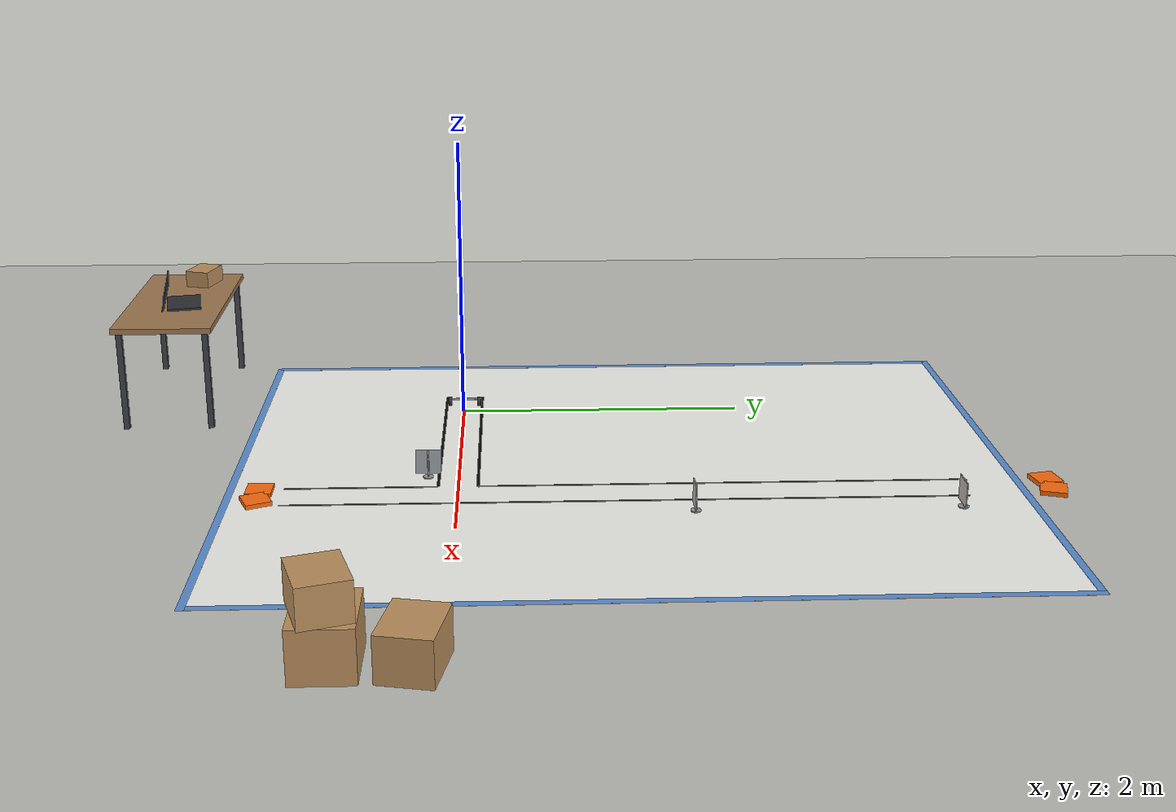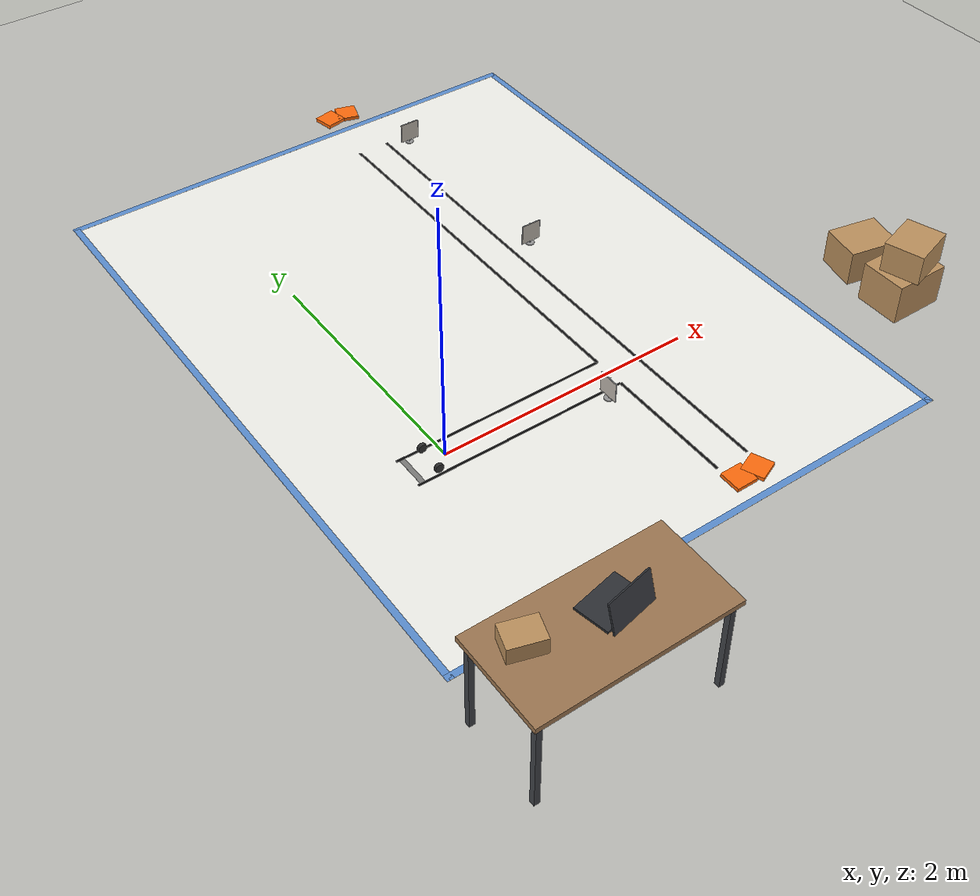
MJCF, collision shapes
<mujoco model="datn_track">
  <!-- URDF rpy is extrinsic X-Y-Z, i.e. MuJoCo eulerseq "XYZ". -->
  <compiler angle="radian" eulerseq="XYZ" inertiafromgeom="false"/>

  <option timestep="0.002" integrator="implicitfast"/>

  <visual>
    <global offwidth="1280" offheight="720" azimuth="-135" elevation="-32"/>
    <headlight ambient="0.26 0.26 0.26" diffuse="0.08 0.08 0.08" specular="0 0 0"/>
    <!-- offsamples also anti-aliases the robot camera, like a real lens. -->
    <quality shadowsize="4096" offsamples="4"/>
    <map haze="0.25" shadowclip="2" znear="0.01"/>
    <rgba haze="0.86 0.9 0.95 1"/>
  </visual>

  <!-- Default viewer framing: the whole track. -->
  <statistic center="1 1.1 0.2" extent="3.5"/>

  <default>
    <!-- Visual-only geometry: never collides. -->
    <default class="visual">
      <geom contype="0" conaffinity="0"/>
    </default>
    <default class="tape">
      <geom type="box" contype="0" conaffinity="0" material="tape"/>
    </default>
    <default class="sign">
      <geom contype="0" conaffinity="0"/>
      <default class="sign_face">
        <geom type="box" size="0.0005 0.08 0.08" pos="0.0035 0 0.11"/>
      </default>
      <default class="sign_plate">
        <geom type="box" size="0.003 0.083 0.083" pos="0 0 0.11" material="metal"/>
      </default>
      <default class="sign_post">
        <geom type="cylinder" size="0.006 0.095" pos="-0.009 0 0.095" material="metal"/>
      </default>
      <default class="sign_base">
        <geom type="cylinder" size="0.035 0.004" pos="-0.009 0 0.004" material="base"/>
      </default>
    </default>
    <default class="cone">
      <geom contype="0" conaffinity="0"/>
      <default class="cone_body">
        <geom type="mesh" mesh="cone_body" material="cone_orange"/>
      </default>
      <default class="cone_band">
        <geom type="mesh" mesh="cone_band" material="cone_white"/>
      </default>
      <default class="cone_foot">
        <geom type="box" size="0.085 0.085 0.015" pos="0 0 0.015" material="cone_orange"/>
      </default>
    </default>
    <default class="furniture">
      <geom contype="0" conaffinity="0"/>
    </default>
  </default>

  <asset>
    <texture name="sky" type="skybox" builtin="gradient"
             rgb1="0.86 0.9 0.95" rgb2="0.62 0.72 0.85" width="256" height="256"/>

    <!-- Room floor: light concrete tiles, 0.5 m, with pale grout. -->
    <texture name="tiles" type="2d" builtin="checker" width="512" height="512"
             rgb1="0.76 0.76 0.74" rgb2="0.72 0.72 0.70" mark="edge" markrgb="0.84 0.84 0.82"
             random="0.03"/>
    <material name="room_floor" texture="tiles" texrepeat="1 1" texuniform="true"
              specular="0.15" shininess="0.3" reflectance="0.04"/>

    <!-- Track mat: matte off-white vinyl with fine speckle. It stays far
         above the lane threshold (grey < 100) so only the tape reads as lane. -->
    <texture name="vinyl" type="2d" builtin="flat" width="256" height="256"
             rgb1="0.95 0.95 0.93" mark="random" markrgb="0.84 0.84 0.82" random="0.04"/>
    <material name="mat" texture="vinyl" texrepeat="2 2" texuniform="true" specular="0.05"/>
    <!-- Printed border: kept light (grey ~130) so it never looks like tape. -->
    <material name="mat_border" rgba="0.36 0.56 0.82 1" specular="0.05"/>

    <material name="tape" rgba="0.03 0.03 0.03 1" specular="0.08" shininess="0.2"/>
    <texture name="start_checker" type="2d" builtin="checker" width="64" height="64"
             rgb1="0.03 0.03 0.03" rgb2="0.95 0.95 0.93"/>
    <material name="start_line" texture="start_checker" texrepeat="1 6"/>

    <texture name="turn_left" type="2d" file="turn_left.png"/>
    <texture name="speed_limit_20" type="2d" file="speed_limit_20.png"/>
    <texture name="stop" type="2d" file="stop.png"/>
    <!-- Retro-reflective sign faces: emission keeps them bright like the
         "lighting off" Gazebo material. -->
    <material name="turn_left" texture="turn_left" emission="0.6" specular="0"/>
    <material name="speed_limit_20" texture="speed_limit_20" emission="0.6" specular="0"/>
    <material name="stop" texture="stop" emission="0.6" specular="0"/>
    <material name="metal" rgba="0.62 0.64 0.66 1" specular="0.6" shininess="0.6"/>
    <material name="base" rgba="0.58 0.58 0.58 1" specular="0.2"/>

    <material name="cone_orange" rgba="1 0.42 0.05 1" specular="0.3" shininess="0.4"/>
    <material name="cone_white" rgba="0.96 0.96 0.96 1" specular="0.4" emission="0.15"/>
    <mesh name="cone_body" vertex="0.0750 0.0000 0.030  0.0713 0.0232 0.030  0.0607 0.0441 0.030  0.0441 0.0607 0.030  0.0232 0.0713 0.030  0.0000 0.0750 0.030  -0.0232 0.0713 0.030  -0.0441 0.0607 0.030  -0.0607 0.0441 0.030  -0.0713 0.0232 0.030  -0.0750 0.0000 0.030  -0.0713 -0.0232 0.030  -0.0607 -0.0441 0.030  -0.0441 -0.0607 0.030  -0.0232 -0.0713 0.030  -0.0000 -0.0750 0.030  0.0232 -0.0713 0.030  0.0441 -0.0607 0.030  0.0607 -0.0441 0.030  0.0713 -0.0232 0.030  0.0120 0.0000 0.300  0.0114 0.0037 0.300  0.0097 0.0071 0.300  0.0071 0.0097 0.300  0.0037 0.0114 0.300  0.0000 0.0120 0.300  -0.0037 0.0114 0.300  -0.0071 0.0097 0.300  -0.0097 0.0071 0.300  -0.0114 0.0037 0.300  -0.0120 0.0000 0.300  -0.0114 -0.0037 0.300  -0.0097 -0.0071 0.300  -0.0071 -0.0097 0.300  -0.0037 -0.0114 0.300  -0.0000 -0.0120 0.300  0.0037 -0.0114 0.300  0.0071 -0.0097 0.300  0.0097 -0.0071 0.300  0.0114 -0.0037 0.300" inertia="shell"/>
    <mesh name="cone_band" vertex="0.0508 0.0000 0.140  0.0483 0.0157 0.140  0.0411 0.0299 0.140  0.0299 0.0411 0.140  0.0157 0.0483 0.140  0.0000 0.0508 0.140  -0.0157 0.0483 0.140  -0.0299 0.0411 0.140  -0.0411 0.0299 0.140  -0.0483 0.0157 0.140  -0.0508 0.0000 0.140  -0.0483 -0.0157 0.140  -0.0411 -0.0299 0.140  -0.0299 -0.0411 0.140  -0.0157 -0.0483 0.140  -0.0000 -0.0508 0.140  0.0157 -0.0483 0.140  0.0299 -0.0411 0.140  0.0411 -0.0299 0.140  0.0483 -0.0157 0.140  0.0368 0.0000 0.200  0.0350 0.0114 0.200  0.0298 0.0217 0.200  0.0217 0.0298 0.200  0.0114 0.0350 0.200  0.0000 0.0368 0.200  -0.0114 0.0350 0.200  -0.0217 0.0298 0.200  -0.0298 0.0217 0.200  -0.0350 0.0114 0.200  -0.0368 0.0000 0.200  -0.0350 -0.0114 0.200  -0.0298 -0.0217 0.200  -0.0217 -0.0298 0.200  -0.0114 -0.0350 0.200  -0.0000 -0.0368 0.200  0.0114 -0.0350 0.200  0.0217 -0.0298 0.200  0.0298 -0.0217 0.200  0.0350 -0.0114 0.200" inertia="shell"/>

    <material name="wood" rgba="0.62 0.47 0.32 1" specular="0.2" shininess="0.3"/>
    <material name="steel" rgba="0.25 0.26 0.28 1" specular="0.5" shininess="0.5"/>
    <material name="laptop" rgba="0.18 0.19 0.21 1" specular="0.4"/>
    <material name="screen" rgba="0.15 0.3 0.45 1" emission="0.5"/>
    <material name="cardboard" rgba="0.74 0.57 0.37 1" specular="0.05"/>

    <mesh name="base_link" file="base_link.STL" inertia="shell"/>
    <mesh name="left_Link" file="left_Link.STL" inertia="shell"/>
    <mesh name="right_Link" file="right_Link.STL" inertia="shell"/>
    <mesh name="free_Link" file="free_Link.STL" inertia="shell"/>
  </asset>

  <worldbody>
    <!-- Indoor lighting: two ceiling lamps over the track cast soft shadows,
         a weak directional fill keeps shadowed areas bright. -->
    <light name="lamp_stem" pos="0.6 0 3" dir="0 0 -1" cutoff="75" exponent="2"
           diffuse="0.36 0.36 0.34" specular="0.15 0.15 0.15" castshadow="true"/>
    <light name="lamp_branch" pos="1.5 2.2 3" dir="0 0 -1" cutoff="75" exponent="2"
           diffuse="0.36 0.36 0.34" specular="0.15 0.15 0.15" castshadow="true"/>
    <light name="fill" directional="true" castshadow="false"
           pos="0 0 10" dir="-0.5 0.1 -0.9" diffuse="0.22 0.22 0.22" specular="0 0 0"/>

    <!-- Room floor. This plane is the only collision surface. -->
    <geom name="ground" type="plane" pos="1 1.1 0" size="6 6 0.1" material="room_floor"
          friction="1 0.005 0.0001"/>

    <!-- Track mat 4 x 5.2 m (the Gazebo road surface) with a printed border. -->
    <geom name="mat" class="visual" type="box" pos="1 1.1 0.0004" size="2 2.6 0.0004"
          material="mat"/>
    <geom name="mat_border_s" class="visual" type="box" pos="1 -1.475 0.0009" size="2 0.025 0.0001" material="mat_border"/>
    <geom name="mat_border_n" class="visual" type="box" pos="1 3.675 0.0009" size="2 0.025 0.0001" material="mat_border"/>
    <geom name="mat_border_w" class="visual" type="box" pos="-0.975 1.1 0.0009" size="0.025 2.6 0.0001" material="mat_border"/>
    <geom name="mat_border_e" class="visual" type="box" pos="2.975 1.1 0.0009" size="0.025 2.6 0.0001" material="mat_border"/>

    <!-- Black tape, 2 cm wide. Straight stem along +X. -->
    <geom name="tape_stem_outer" class="tape" pos="0.535 -0.13 0.0015" size="0.835 0.01 0.0005"/>
    <geom name="tape_stem_inner" class="tape" pos="0.535 0.13 0.0015" size="0.835 0.01 0.0005"/>
    <!-- Left branch along +Y, the route after the junction. -->
    <geom name="tape_left_branch_outer" class="tape" pos="1.63 1.585 0.0015" size="0.01 1.715 0.0005"/>
    <geom name="tape_left_branch_inner" class="tape" pos="1.37 1.715 0.0015" size="0.01 1.585 0.0005"/>
    <!-- Right branch along -Y: a short dead end that forms the T. -->
    <geom name="tape_right_branch_outer" class="tape" pos="1.63 -0.63 0.0015" size="0.01 0.5 0.0005"/>
    <geom name="tape_right_branch_inner" class="tape" pos="1.37 -0.63 0.0015" size="0.01 0.5 0.0005"/>

    <!-- Chequered start line behind the robot's start pose (never in view
         of its camera). -->
    <geom name="start_line" class="visual" type="box" pos="-0.26 0 0.0015" size="0.02 0.12 0.0005"
          material="start_line"/>

    <body name="sign_re_trai" pos="1.2 -0.20 0" euler="0 0 3.14159" childclass="sign">
      <geom class="sign_face" material="turn_left"/>
      <geom class="sign_plate"/>
      <geom class="sign_post"/>
      <geom class="sign_base"/>
    </body>
    <body name="sign_toc_do_20" pos="1.80 1.5 0" euler="0 0 -1.5708" childclass="sign">
      <geom class="sign_face" material="speed_limit_20"/>
      <geom class="sign_plate"/>
      <geom class="sign_post"/>
      <geom class="sign_base"/>
    </body>
    <body name="sign_dung_lai" pos="1.80 3.2 0" euler="0 0 -1.5708" childclass="sign">
      <geom class="sign_face" material="stop"/>
      <geom class="sign_plate"/>
      <geom class="sign_post"/>
      <geom class="sign_base"/>
    </body>

    <body name="cone_right_1" pos="1.42 -1.28 0" childclass="cone">
      <geom class="cone_foot"/><geom class="cone_body"/><geom class="cone_band"/>
    </body>
    <body name="cone_right_2" pos="1.58 -1.28 0" euler="0 0 0.4" childclass="cone">
      <geom class="cone_foot"/><geom class="cone_body"/><geom class="cone_band"/>
    </body>
    <body name="cone_end_1" pos="1.42 3.86 0" euler="0 0 0.2" childclass="cone">
      <geom class="cone_foot"/><geom class="cone_body"/><geom class="cone_band"/>
    </body>
    <body name="cone_end_2" pos="1.58 3.86 0" euler="0 0 -0.3" childclass="cone">
      <geom class="cone_foot"/><geom class="cone_body"/><geom class="cone_band"/>
    </body>

    <!-- Workbench with the control laptop, beside the start area. -->
    <body name="workbench" pos="-0.4 -2.1 0" childclass="furniture">
      <geom type="box" size="0.7 0.35 0.02" pos="0 0 0.74" material="wood"/>
      <geom type="box" size="0.02 0.02 0.36" pos="0.65 0.3 0.36" material="steel"/>
      <geom type="box" size="0.02 0.02 0.36" pos="-0.65 0.3 0.36" material="steel"/>
      <geom type="box" size="0.02 0.02 0.36" pos="0.65 -0.3 0.36" material="steel"/>
      <geom type="box" size="0.02 0.02 0.36" pos="-0.65 -0.3 0.36" material="steel"/>
      <geom type="box" size="0.17 0.12 0.008" pos="0.1 0.05 0.768" euler="0 0 0.2" material="laptop"/>
      <geom type="box" size="0.17 0.006 0.11" pos="0.135 -0.07 0.87" euler="-0.25 0 0.2" material="laptop"/>
      <geom type="box" size="0.155 0.002 0.095" pos="0.137 -0.062 0.872" euler="-0.25 0 0.2" material="screen"/>
      <geom type="box" size="0.12 0.09 0.06" pos="-0.45 0.1 0.82" euler="0 0 -0.3" material="cardboard"/>
    </body>

    <!-- Spare boxes stacked off the mat. -->
    <body name="boxes" pos="3.6 -0.6 0" childclass="furniture">
      <geom type="box" size="0.22 0.18 0.16" pos="0 0 0.16" material="cardboard"/>
      <geom type="box" size="0.18 0.15 0.12" pos="0.03 -0.02 0.44" euler="0 0 0.3" material="cardboard"/>
      <geom type="box" size="0.2 0.16 0.14" pos="0.05 0.45 0.14" euler="0 0 -0.2" material="cardboard"/>
    </body>

    <!-- Robot. base_link rests 0.035 m above the ground: the wheel axles sit
         1 mm below it and the wheels have a 0.034 m radius. -->
    <body name="base_link" pos="0 0 0.036">
      <freejoint name="root"/>
      <!-- URDF puts the COM 0.45 m above the chassis, which is not physical
           for this robot; a low COM is used instead. -->
      <inertial pos="-0.016 -0.005 0.05" mass="1.566167"
                diaginertia="0.002201 0.002613 0.003153"/>
      <geom name="base_visual" class="visual" type="mesh" mesh="base_link"
            rgba="0.79 0.82 0.93 1"/>

      <geom name="caster_visual" class="visual" type="mesh" mesh="free_Link"
            pos="0.033141 -0.0013757 -0.005" euler="-3.1416 0 -0.0398" rgba="1 1 1 1"/>
      <geom name="caster" type="sphere" size="0.012" pos="0.028 -0.0014 -0.023" priority="1"
            friction="0.01 0.005 0.0001" rgba="1 1 1 0"/>

      <!-- Camera: same mount as the Gazebo sensor (x 0.03, z 0.27, pitch 35 deg
           down) and the same 320x240 intrinsics (fx = fy = 265 px). MuJoCo
           cameras look along -Z with +Y up. -->
      <camera name="front_camera" pos="0.03 0 0.27"
              xyaxes="0 -1 0 0.573576 0 0.819152" fovy="48.721"/>

      <!-- Wheels. Both hinge axes are +Y, so positive speed drives forward,
           matching the Gazebo diff-drive convention. -->
      <body name="left_Link" pos="-0.11073 0.11121 -0.001">
        <joint name="left_join" type="hinge" axis="0 1 0" armature="0.0005" damping="0.0005"/>
        <inertial pos="0 0 0" mass="0.06756" diaginertia="0.000022 0.000028 0.000022"/>
        <geom name="left_visual" class="visual" type="mesh" mesh="left_Link"
              euler="1.5708 0 -0.0398" rgba="0.75 0.75 0.75 1"/>
        <geom name="left_wheel" type="cylinder" size="0.034 0.0125" euler="1.5708 0 0"
              friction="1 0.005 0.0001" rgba="0.2 0.2 0.2 0"/>
      </body>
      <body name="right_Link" pos="-0.11923 -0.10212 -0.001">
        <joint name="right_join" type="hinge" axis="0 1 0" armature="0.0005" damping="0.0005"/>
        <inertial pos="0 0 0" mass="0.06756" diaginertia="0.000022 0.000028 0.000022"/>
        <geom name="right_visual" class="visual" type="mesh" mesh="right_Link"
              euler="-1.5708 0 0" rgba="0.75 0.75 0.75 1"/>
        <geom name="right_wheel" type="cylinder" size="0.034 0.0125" euler="1.5708 0 0"
              friction="1 0.005 0.0001" rgba="0.2 0.2 0.2 0"/>
      </body>
    </body>
  </worldbody>

  <actuator>
    <!-- Wheel speed servos in rad/s. Torque limit is generous for a 1.7 kg
         robot but finite, like max_wheel_torque in the Gazebo plugin. -->
    <velocity name="left_motor" joint="left_join" kv="0.5"
              ctrlrange="-30 30" forcerange="-2 2"/>
    <velocity name="right_motor" joint="right_join" kv="0.5"
              ctrlrange="-30 30" forcerange="-2 2"/>
  </actuator>
</mujoco>
